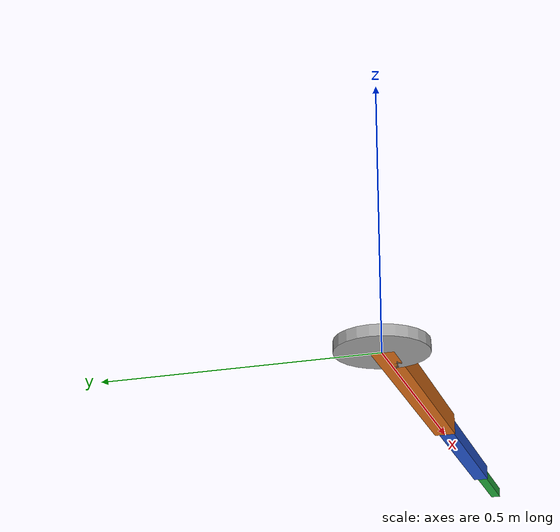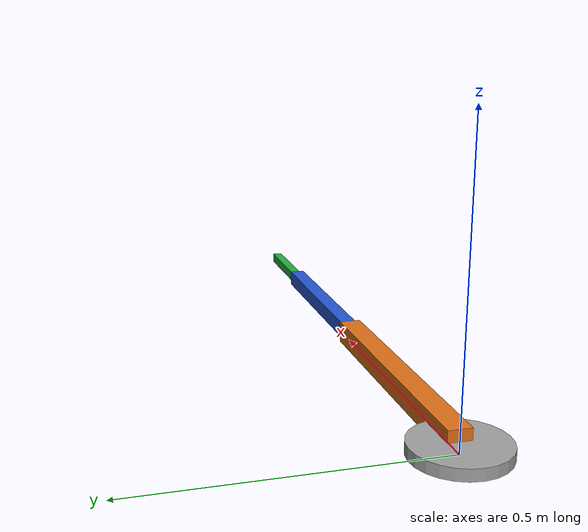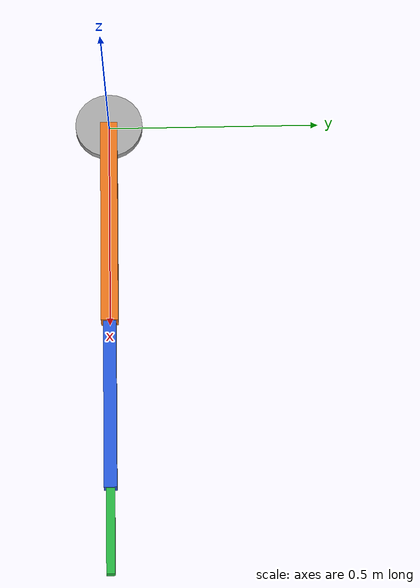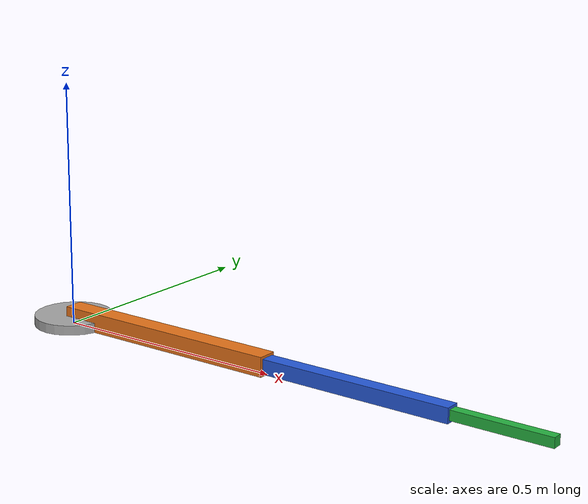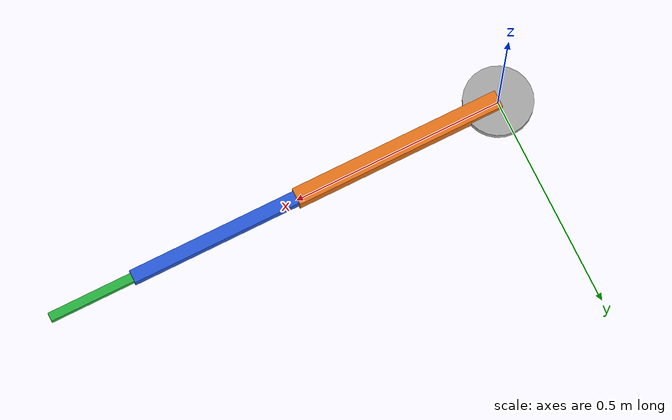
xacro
<?xml version="1.0"?>
<robot name="robot_3r_xacro" xmlns:xacro="http://www.ros.org/wiki/xacro">
  <xacro:include filename="components/arm_macros.xacro"/>

  <xacro:property name="base_radius" value="0.08"/>
  <xacro:property name="base_length" value="0.02"/>
  <xacro:property name="link1_length" value="0.5"/>
  <xacro:property name="link1_width" value="0.04"/>
  <xacro:property name="link2_length" value="0.4"/>
  <xacro:property name="link2_width" value="0.03"/>
  <xacro:property name="link3_length" value="0.2"/>
  <xacro:property name="link3_width" value="0.02"/>

  <link name="world"/>

  <xacro:planar_arm_3r
    prefix=""
    parent="world"
    base_xyz="0 0 ${base_length / 2.0}"
    base_radius="${base_radius}"
    base_length="${base_length}"
    link1_length="${link1_length}"
    link1_width="${link1_width}"
    link2_length="${link2_length}"
    link2_width="${link2_width}"
    link3_length="${link3_length}"
    link3_width="${link3_width}"/>
</robot>

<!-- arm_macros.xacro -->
<robot xmlns:xacro="http://www.ros.org/wiki/xacro">
  <material name="gray">
    <color rgba="0.65 0.65 0.65 1.0"/>
  </material>
  <material name="orange">
    <color rgba="0.90 0.45 0.10 1.0"/>
  </material>
  <material name="blue">
    <color rgba="0.15 0.35 0.85 1.0"/>
  </material>
  <material name="green">
    <color rgba="0.15 0.70 0.25 1.0"/>
  </material>

  <xacro:macro name="arm_base_link" params="name radius length material:=gray">
    <link name="${name}">
      <visual>
        <geometry>
          <cylinder radius="${radius}" length="${length}"/>
        </geometry>
        <material name="${material}"/>
      </visual>
      <collision>
        <geometry>
          <cylinder radius="${radius}" length="${length}"/>
        </geometry>
      </collision>
    </link>
  </xacro:macro>

  <xacro:macro name="arm_box_link" params="name length width material:=orange">
    <link name="${name}">
      <visual>
        <origin xyz="${length / 2.0} 0 0" rpy="0 0 0"/>
        <geometry>
          <box size="${length} ${width} ${width}"/>
        </geometry>
        <material name="${material}"/>
      </visual>
      <collision>
        <origin xyz="${length / 2.0} 0 0" rpy="0 0 0"/>
        <geometry>
          <box size="${length} ${width} ${width}"/>
        </geometry>
      </collision>
    </link>
  </xacro:macro>

  <xacro:macro name="revolute_z_joint" params="name parent child xyz limit_lower:=-3.14159 limit_upper:=3.14159">
    <joint name="${name}" type="revolute">
      <parent link="${parent}"/>
      <child link="${child}"/>
      <origin xyz="${xyz}" rpy="0 0 0"/>
      <axis xyz="0 0 1"/>
      <limit lower="${limit_lower}" upper="${limit_upper}" effort="10.0" velocity="2.0"/>
    </joint>
  </xacro:macro>

  <xacro:macro
    name="planar_arm_2r"
    params="prefix parent base_xyz base_radius base_length link1_length link1_width link2_length link2_width">
    <xacro:arm_base_link
      name="${prefix}base_link"
      radius="${base_radius}"
      length="${base_length}"
      material="gray"/>

    <joint name="${prefix}world_to_base" type="fixed">
      <parent link="${parent}"/>
      <child link="${prefix}base_link"/>
      <origin xyz="${base_xyz}" rpy="0 0 0"/>
    </joint>

    <xacro:arm_box_link
      name="${prefix}link_1"
      length="${link1_length}"
      width="${link1_width}"
      material="orange"/>
    <xacro:revolute_z_joint
      name="${prefix}joint_1"
      parent="${prefix}base_link"
      child="${prefix}link_1"
      xyz="0 0 ${base_length / 2.0}"/>

    <xacro:arm_box_link
      name="${prefix}link_2"
      length="${link2_length}"
      width="${link2_width}"
      material="blue"/>
    <xacro:revolute_z_joint
      name="${prefix}joint_2"
      parent="${prefix}link_1"
      child="${prefix}link_2"
      xyz="${link1_length} 0 0"/>
  </xacro:macro>

  <xacro:macro
    name="planar_arm_3r"
    params="prefix parent base_xyz base_radius base_length link1_length link1_width link2_length link2_width link3_length link3_width">
    <xacro:arm_base_link
      name="${prefix}base_link"
      radius="${base_radius}"
      length="${base_length}"
      material="gray"/>

    <joint name="${prefix}world_to_base" type="fixed">
      <parent link="${parent}"/>
      <child link="${prefix}base_link"/>
      <origin xyz="${base_xyz}" rpy="0 0 0"/>
    </joint>

    <xacro:arm_box_link
      name="${prefix}link_1"
      length="${link1_length}"
      width="${link1_width}"
      material="orange"/>
    <xacro:revolute_z_joint
      name="${prefix}joint_1"
      parent="${prefix}base_link"
      child="${prefix}link_1"
      xyz="0 0 ${base_length / 2.0}"/>

    <xacro:arm_box_link
      name="${prefix}link_2"
      length="${link2_length}"
      width="${link2_width}"
      material="blue"/>
    <xacro:revolute_z_joint
      name="${prefix}joint_2"
      parent="${prefix}link_1"
      child="${prefix}link_2"
      xyz="${link1_length} 0 0"/>

    <xacro:arm_box_link
      name="${prefix}link_3"
      length="${link3_length}"
      width="${link3_width}"
      material="green"/>
    <xacro:revolute_z_joint
      name="${prefix}joint_3"
      parent="${prefix}link_2"
      child="${prefix}link_3"
      xyz="${link2_length} 0 0"/>
  </xacro:macro>
</robot>
